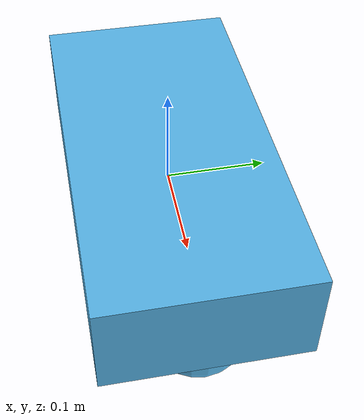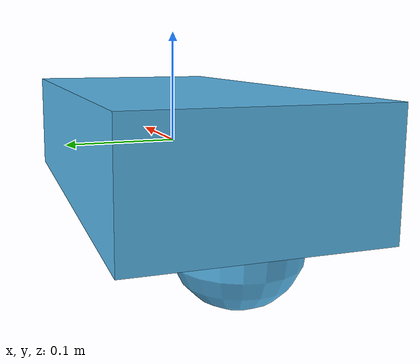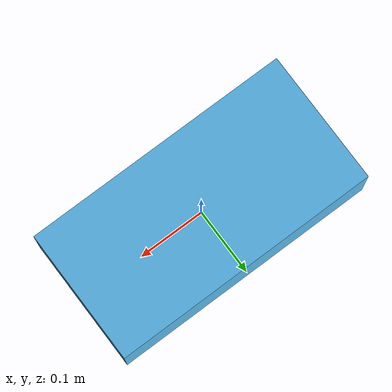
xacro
<?xml version='1.0'?>

<robot name="my_robot" xmlns:xacro="http://www.ros.org/wiki/xacro">

                                                  <link name="robot_footprint"></link>

                                                  <joint name="robot_footprint_joint" type="fixed">
                                                    <origin xyz="0 0 0" rpy="0 0 0" />
                                                    <parent link="robot_footprint"/>
                                                    <child link="chassis" />
                                                  </joint>

                                                  <link name='chassis'>
                                                    <pose>0 0 0.1 0 0 0</pose>

                                                    <inertial>
                                                      <mass value="15.0"/>
                                                      <origin xyz="0.0 0 0" rpy=" 0 0 0"/>
                                                      <inertia
                                                          ixx="0.1" ixy="0" ixz="0"
                                                          iyy="0.1" iyz="0"
                                                          izz="0.1"
                                                      />
                                                    </inertial>

                                                    <collision name='collision'>
                                                      <origin xyz="0 0 0" rpy=" 0 0 0"/>
                                                      <geometry>
                                                        <box size=".4 .2 .1"/>
                                                      </geometry>
                                                    </collision>

                                                    <visual name='chassis_visual'>
                                                      <origin xyz="0 0 0" rpy=" 0 0 0"/>
                                                      <geometry>
                                                        <box size=".4 .2 .1"/>
                                                      </geometry>
                                                    </visual>

                                                    <collision name='back_caster_collision'>
                                                      <origin xyz="-0.15 0 -0.05" rpy=" 0 0 0"/>
                                                      <geometry>
                                                        <sphere radius="0.0499"/>
                                                      </geometry>
                                                    </collision>

                                                    <visual name='back_caster_visual'>
                                                      <origin xyz="-0.15 0 -0.05" rpy=" 0 0 0"/>
                                                      <geometry>
                                                        <sphere radius="0.05"/>
                                                      </geometry>
                                                    </visual>

                                                    <collision name='front_caster_collision'>
                                                      <origin xyz="0.15 0 -0.05" rpy=" 0 0 0"/>
                                                      <geometry>
                                                        <sphere radius="0.0499"/>
                                                      </geometry>
                                                    </collision>

                                                    <visual name='front_caster_visual'>
                                                      <origin xyz="0.15 0 -0.05" rpy=" 0 0 0"/>
                                                      <geometry>
                                                        <sphere radius="0.05"/>
                                                      </geometry>
                                                    </visual>

                                                  </link>

</robot>
